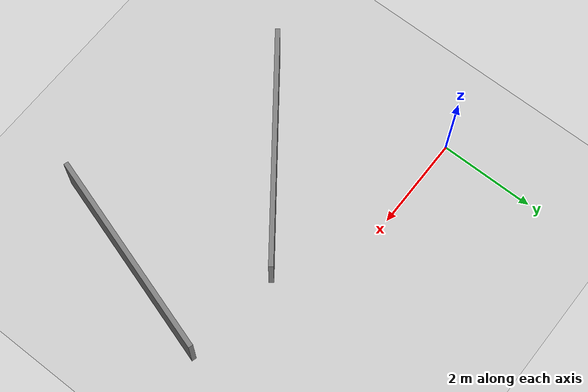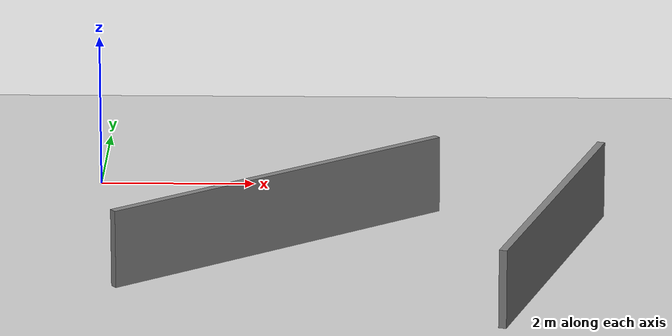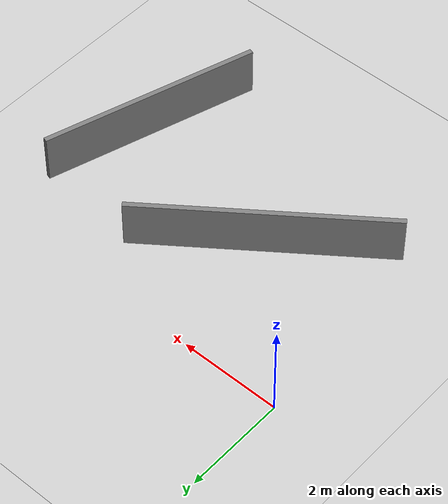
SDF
<?xml version='1.0' encoding='utf-8'?>
<sdf version="1.9">
  <world name="one_world">
    <physics name="1ms" type="dart">
      <max_step_size>0.001</max_step_size>
      <real_time_factor>1</real_time_factor>
      <real_time_update_rate>1000</real_time_update_rate>
    </physics>
    <plugin name="gz::sim::systems::Physics" filename="gz-sim-physics-system" />
    <plugin name="gz::sim::systems::UserCommands" filename="gz-sim-user-commands-system" />
    <plugin name="gz::sim::systems::SceneBroadcaster" filename="gz-sim-scene-broadcaster-system" />
    <plugin name="gz::sim::systems::Contact" filename="gz-sim-contact-system" />
    <plugin name="gz::sim::systems::Sensors" filename="gz-sim-sensors-system">
      <render_engine>ogre2</render_engine>
    </plugin>
    <gravity>0 0 -9.8</gravity>
    <magnetic_field>6e-06 2.3e-05 -4.2e-05</magnetic_field>
    <atmosphere type="adiabatic" />
    <scene>
      <ambient>0.4 0.4 0.4 1</ambient>
      <background>0.7 0.7 0.7 1</background>
      <shadows>true</shadows>
    </scene>
    <model name="ground_plane">
      <static>true</static>
      <link name="link">
        <collision name="collision">
          <geometry>
            <plane>
              <normal>0 0 1</normal>
              <size>100 100</size>
            </plane>
          </geometry>
          <surface>
            <friction>
              <ode />
            </friction>
            <bounce />
            <contact />
          </surface>
        </collision>
        <visual name="visual">
          <geometry>
            <plane>
              <normal>0 0 1</normal>
              <size>100 100</size>
            </plane>
          </geometry>
          <material>
            <ambient>0.8 0.8 0.8 1</ambient>
            <diffuse>0.8 0.8 0.8 1</diffuse>
            <specular>0.8 0.8 0.8 1</specular>
          </material>
        </visual>
        <pose>0 0 0 0 -0 0</pose>
        <inertial>
          <pose>0 0 0 0 -0 0</pose>
          <mass>1</mass>
          <inertia>
            <ixx>1</ixx>
            <ixy>0</ixy>
            <ixz>0</ixz>
            <iyy>1</iyy>
            <iyz>0</iyz>
            <izz>1</izz>
          </inertia>
        </inertial>
        <enable_wind>false</enable_wind>
      </link>
      <pose>0 0 0 0 -0 0</pose>
      <self_collide>false</self_collide>
    </model>
    <light name="sun" type="directional">
      <pose>0 0 10 0 -0 0</pose>
      <cast_shadows>true</cast_shadows>
      <intensity>1</intensity>
      <direction>-0.5 0.1 -0.9</direction>
      <diffuse>0.8 0.8 0.8 1</diffuse>
      <specular>0.2 0.2 0.2 1</specular>
      <attenuation>
        <range>1000</range>
        <linear>0.01</linear>
        <constant>0.90000000000000002</constant>
        <quadratic>0.001</quadratic>
      </attenuation>
      <spot>
        <inner_angle>0</inner_angle>
        <outer_angle>0</outer_angle>
        <falloff>0</falloff>
      </spot>
    </light>
  <model name="wall_1">
            <static>true</static>
            <type>wall</type>
            <pose>2.400000 -2.500000 0.500000 0 0 0.643501</pose>
            <link name="link">
                <collision name="collision">
                    <geometry><box><size>5.000000 0.100000 1.000000</size></box></geometry>
                </collision>
                <visual name="visual">
                    <geometry><box><size>5.000000 0.100000 1.000000</size></box></geometry>
                    <material>
                        <diffuse>0.5 0.5 0.5 1</diffuse>
                    </material>
                </visual></link></model><model name="wall_2">
            <static>true</static>
            <type>wall</type>
            <pose>5.850000 -3.300000 0.500000 0 0 -1.870967</pose>
            <link name="link">
                <collision name="collision">
                    <geometry><box><size>4.396590 0.100000 1.000000</size></box></geometry>
                </collision>
                <visual name="visual">
                    <geometry><box><size>4.396590 0.100000 1.000000</size></box></geometry>
                    <material>
                        <diffuse>0.5 0.5 0.5 1</diffuse>
                    </material>
                </visual></link></model></world>
</sdf>
